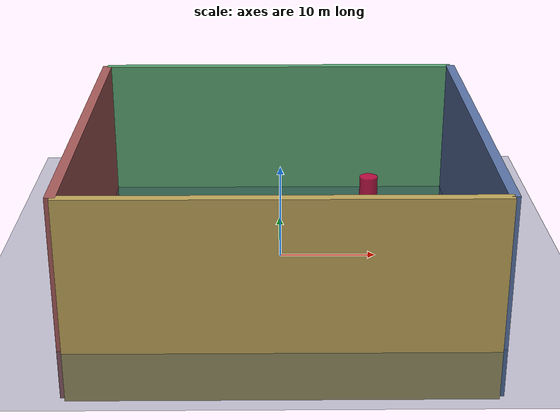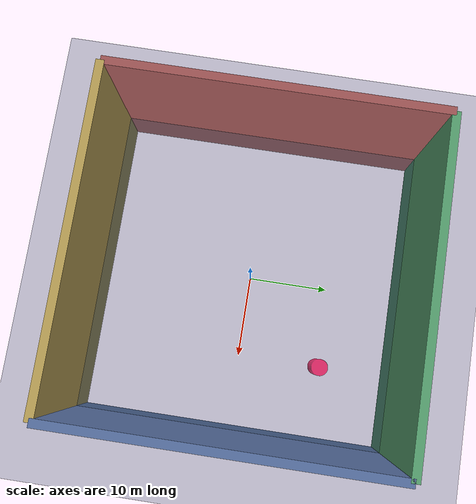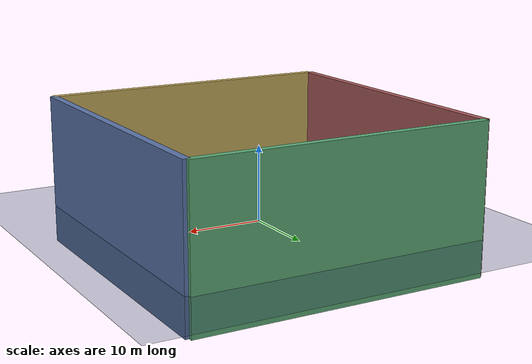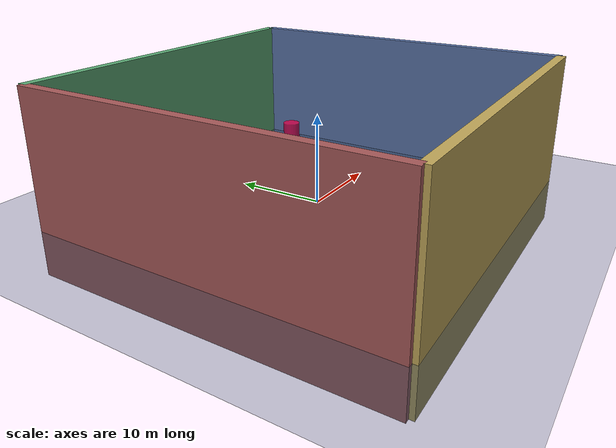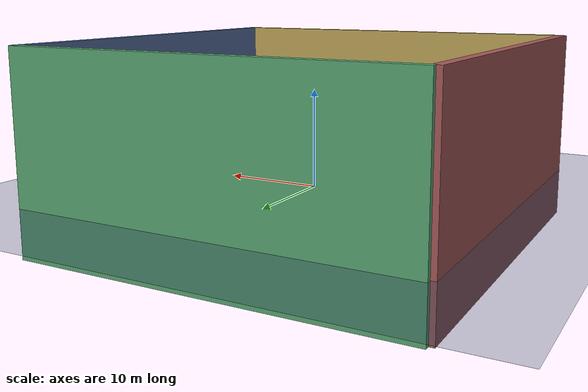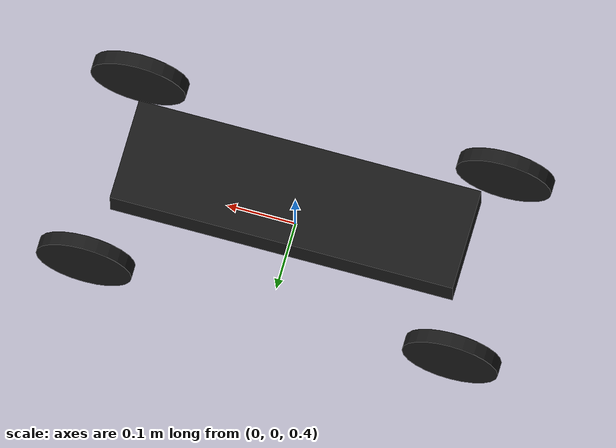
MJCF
<mujoco model="car_robot">
  <compiler angle="radian" autolimits="true"/>

  <option timestep="0.004166" iterations="50" solver="Newton" tolerance="1e-10">
    <flag contact="enable" energy="enable"/>
  </option>

  <asset>
    <texture
      name="grid"
      type="2d"
      builtin="checker"
      width="512"
      height="512"
      rgb1=".1 .2 .3"
      rgb2=".2 .3 .4"
      />
    <!-- North wall - blue-ish -->
    <texture name="wall_north_tex" type="2d" builtin="checker"
             rgb1="0.3 0.4 0.6" rgb2="0.4 0.5 0.7"
             width="512" height="512"/>
    <material name="wall_north_mat" texture="wall_north_tex" texrepeat="200 200"/>

    <!-- South wall - red-ish -->
    <texture name="wall_south_tex" type="2d" builtin="checker"
             rgb1="0.6 0.3 0.3" rgb2="0.7 0.4 0.4"
             width="512" height="512"/>
    <material name="wall_south_mat" texture="wall_south_tex" texrepeat="200 200"/>

    <!-- East wall - green-ish -->
    <texture name="wall_east_tex" type="2d" builtin="checker"
             rgb1="0.3 0.6 0.4" rgb2="0.4 0.7 0.5"
             width="512" height="512"/>
    <material name="wall_east_mat" texture="wall_east_tex" texrepeat="200 200"/>

    <!-- West wall - yellow-ish -->
    <texture name="wall_west_tex" type="2d" builtin="checker"
             rgb1="0.7 0.6 0.3" rgb2="0.8 0.7 0.4"
             width="512" height="512"/>
    <material name="wall_west_mat" texture="wall_west_tex" texrepeat="200 200"/>

    <texture
      name="skybox"
      type="skybox"
      builtin="gradient"
      rgb1="0.3 0.5 0.9"
      rgb2="0.1 0.3 0.7"
      width="512"
      height="512"
    />
    <material name="grid" texture="grid" texrepeat="50 50" reflectance=".0"/>
    <material name="blue" rgba="0 0 0.8 1"/>
    <material name="black" rgba="0.1 0.1 0.1 1"/>
    <material name="green" rgba="0.1 0.6 0.1 1"/>
    <material name="brown" rgba="0.4 0.2 0.1 1"/>
    <material name="goal" rgba="0.9 0.0 0.3 0.8"/>
  </asset>

  <default>
    <geom friction="1.0 0.005 0.0001" solref="0.01 1"/>
    <joint damping="0.1" armature="0.01"/>
    <default class="wheel">
      <geom type="cylinder" size="0.07 0.01" friction="0.9 0.001 0.001"
            material="black" mass="0.5"/>
      <joint axis="0 1 0" damping="0.01"/>
    </default>
    <default class="suspension">
      <joint
        type="slide"
        axis="0 0 1"
        limited="true"
        range="-0.03 0.03"
        damping="12"
        stiffness="600"
      />
    </default>
    <default class="steering">
      <joint type="hinge" axis="0 0 1" limited="true" range="-1.5 1.5"
             damping="1.0"/>
    </default>
  </default>

  <visual>
    <headlight ambient="0.8 0.8 0.8" diffuse="0.8 0.8 0.8"/>
    <map znear="0.001" zfar="10" />
  </visual>

  <worldbody>
    <light pos="0 0 50" dir="0 0 -1" diffuse="0.8 0.8 0.8"/>
    <light pos="20 20 30" dir="-1 -1 -1" diffuse="0.5 0.5 0.5"/>
    <geom name="ground" type="plane" size="100 100 0.1" material="grid"/>

    <geom name="n_wall" material="wall_north_mat" type="box" pos="20 0 5" size="0.5 20 10"  />
    <geom name="s_wall" material="wall_south_mat" type="box" pos="-20 0 5" size="0.5 20 10" />
    <geom name="e_wall" material="wall_east_mat" type="box" pos="0 20 5" size="20 0.5 10"  />
    <geom name="w_wall" material="wall_west_mat" type="box" pos="0 -20 5" size="20 0.5 10" />

    <!-- Goal marker -->
    <body name="goal" pos="10 10 2.5">
      <geom name="goal_geom" type="cylinder" size="1.0 2.5"
            material="goal" contype="0" conaffinity="0"/>
    </body>

    <!-- Car chassis -->
    <body name="base_link" pos="0 0 0.5">
      <freejoint/>
      <geom name="chassis" type="box" size="0.25 0.075 0.025"
            material="black" mass="8.0"/>
      <camera name="front_camera_l" pos="0.1 0 0.5" xyaxes="0 -1 0 0.1 0 1" fovy="45" />
      <camera name="front_camera_r" pos="0.1 0 0.5" xyaxes="0 -1 0 0.1 0 1" fovy="45"/>

      <!-- Front Left Wheel Assembly -->
      <body name="front_left_suspension" pos="0.2675 0.1405 -0.025">
        <inertial pos="0 0 0" mass="0.1" diaginertia="0.0001 0.0001 0.0001"/>
        <joint name="front_left_suspension" class="suspension"/>
        <body name="front_left_steering" pos="0 0 0">
          <inertial pos="0 0 0" mass="0.1" diaginertia="0.0001 0.0001 0.0001"/>
          <joint name="front_left_steering_joint" class="steering"/>
          <body name="front_left_wheel" pos="0 0 -0.045">
            <joint name="front_left_wheel_joint" class="wheel"/>
            <geom name="front_left_wheel_geom" class="wheel" euler="1.5708 0 0"/>
          </body>
        </body>
      </body>

      <!-- Front Right Wheel Assembly -->
      <body name="front_right_suspension" pos="0.2675 -0.1405 -0.025">
        <inertial pos="0 0 0" mass="0.1" diaginertia="0.0001 0.0001 0.0001"/>
        <joint name="front_right_suspension" class="suspension"/>
        <body name="front_right_steering" pos="0 0 0">
          <inertial pos="0 0 0" mass="0.1" diaginertia="0.0001 0.0001 0.0001"/>
          <joint name="front_right_steering_joint" class="steering"/>
          <body name="front_right_wheel" pos="0 0 -0.045">
            <joint name="front_right_wheel_joint" class="wheel"/>
            <geom name="front_right_wheel_geom" class="wheel" euler="1.5708 0 0"/>
          </body>
        </body>
      </body>

      <!-- Rear Left Wheel Assembly -->
      <body name="rear_left_suspension" pos="-0.2675 0.1405 -0.025">
        <inertial pos="0 0 0" mass="0.1" diaginertia="0.0001 0.0001 0.0001"/>
        <joint name="rear_left_suspension" class="suspension"/>
        <body name="rear_left_wheel" pos="0 0 -0.045">
          <joint name="rear_left_wheel_joint" class="wheel"/>
          <geom name="rear_left_wheel_geom" class="wheel" euler="1.5708 0 0"/>
        </body>
      </body>

      <!-- Rear Right Wheel Assembly -->
      <body name="rear_right_suspension" pos="-0.2675 -0.1405 -0.025">
        <inertial pos="0 0 0" mass="0.1" diaginertia="0.0001 0.0001 0.0001"/>
        <joint name="rear_right_suspension" class="suspension"/>
        <body name="rear_right_wheel" pos="0 0 -0.045">
          <joint name="rear_right_wheel_joint" class="wheel"/>
          <geom name="rear_right_wheel_geom" class="wheel" euler="1.5708 0 0"/>
        </body>
      </body>
    </body>
  </worldbody>

  <actuator>
    <!-- Steering actuators (position control) -->
    <position name="front_left_steering" joint="front_left_steering_joint"
              kp="50" ctrlrange="-1.5 1.5"/>
    <position name="front_right_steering" joint="front_right_steering_joint"
              kp="50" ctrlrange="-1.5 1.5"/>

    <!-- Drive actuators (torque control for rear wheels) -->
    <motor name="rear_left_drive" joint="rear_left_wheel_joint"
           gear="11.82" ctrlrange="-0.15 0.15"/>
    <motor name="rear_right_drive" joint="rear_right_wheel_joint"
           gear="11.82" ctrlrange="-0.15 0.15"/>
    <motor name="front_left_drive" joint="front_left_wheel_joint"
           gear="11.82" ctrlrange="-0.15 0.15"/>
    <motor name="front_right_drive" joint="front_right_wheel_joint"
           gear="11.82" ctrlrange="-0.15 0.15"/>
  </actuator>

  <sensor>
    <framepos name="car_position" objtype="body" objname="base_link"/>
    <framequat name="car_orientation" objtype="body" objname="base_link"/>
    <framelinvel name="car_velocity" objtype="body" objname="base_link"/>
    <frameangvel name="car_angvel" objtype="body" objname="base_link"/>
    <jointpos name="fl_steering" joint="front_left_steering_joint"/>
    <jointpos name="fr_steering" joint="front_right_steering_joint"/>
    <jointvel name="rl_wheel_vel" joint="rear_left_wheel_joint"/>
    <jointvel name="rr_wheel_vel" joint="rear_right_wheel_joint"/>
  </sensor>
</mujoco>
